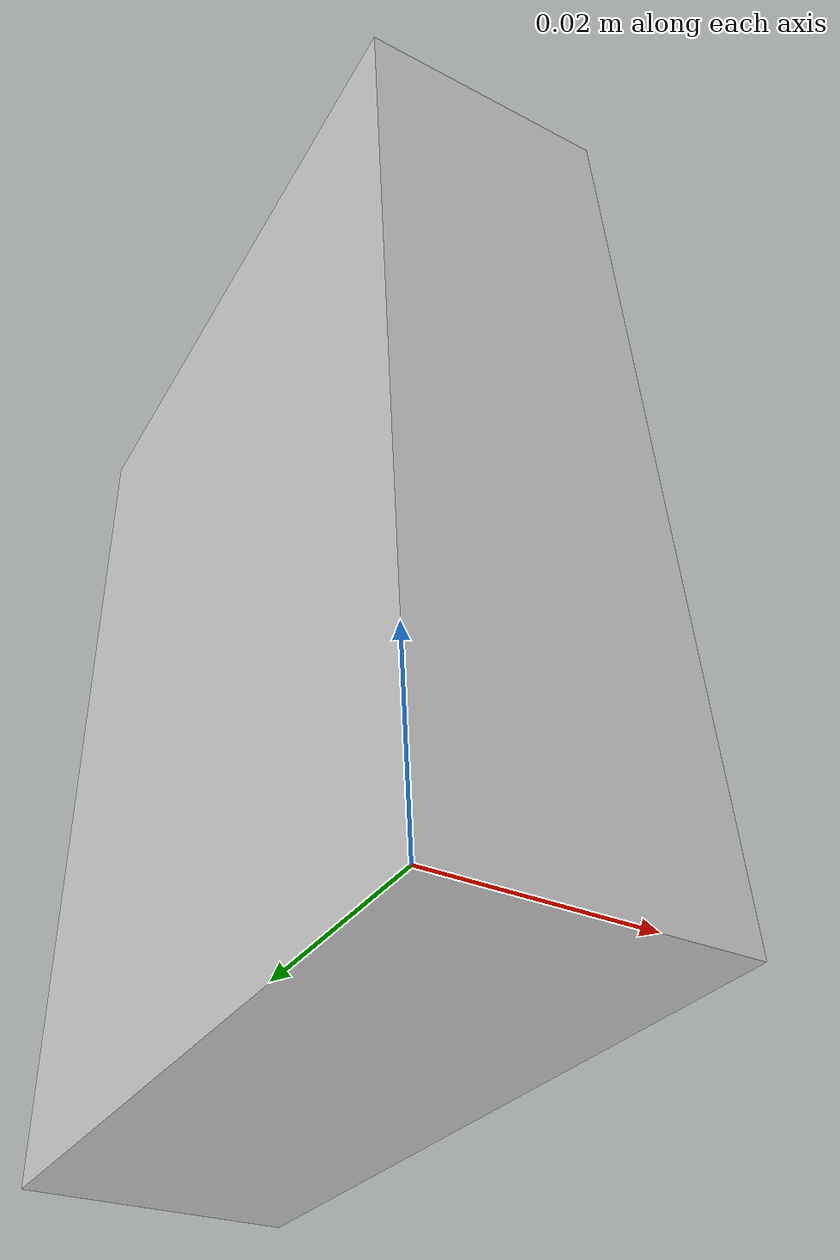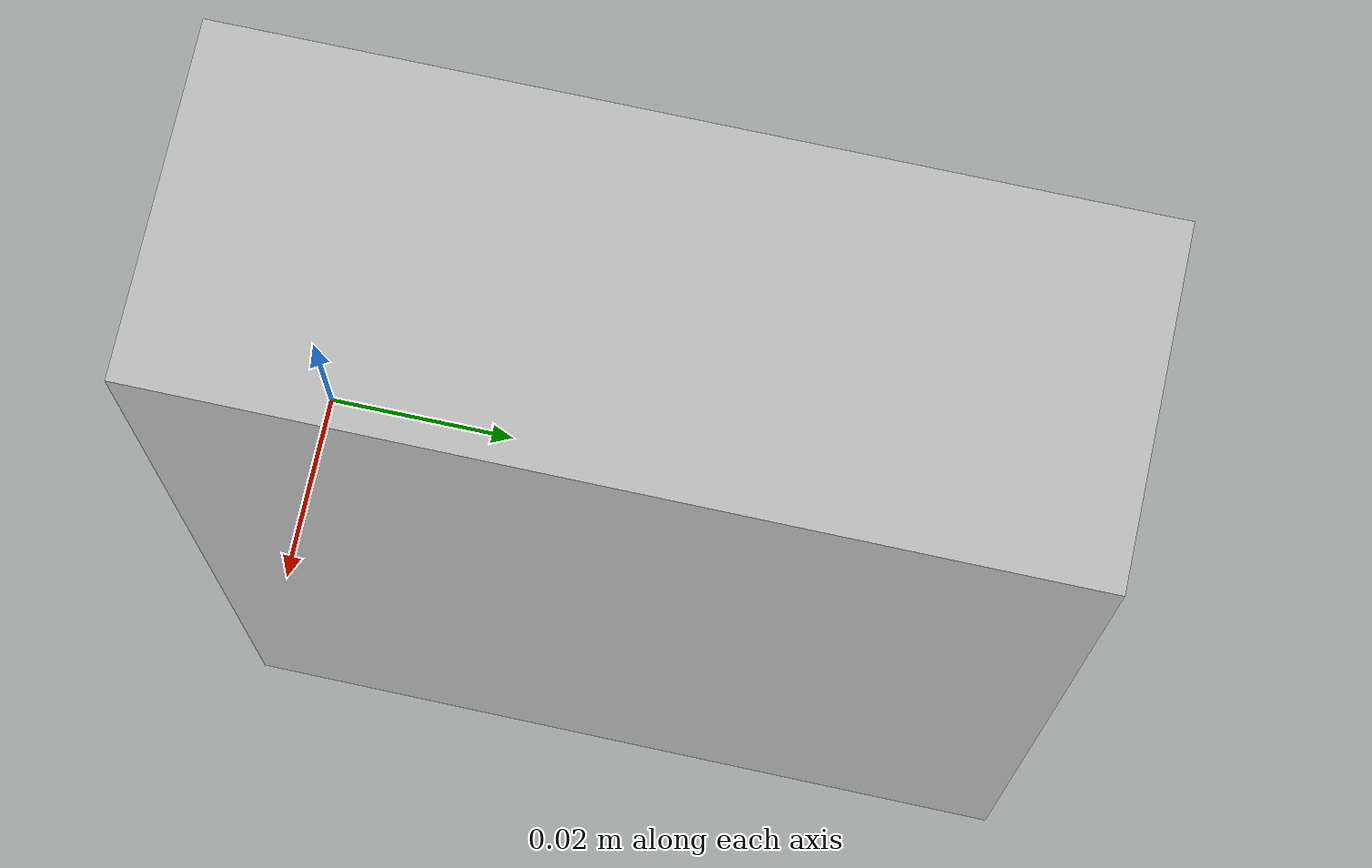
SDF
<?xml version="1.0" ?>
<sdf version="1.4">
  <model name="z-froot_loop">
    <link name="z-froot_loop_link">
      <inertial>
        <pose>-0.00 0.0 -0.005 0 0 0</pose>
        <mass>0.8</mass>
        <inertia>
          <ixx>0.001667</ixx>
	  <ixy>0.0</ixy>
	  <ixz>0.0</ixz>
	  <iyy>0.001667</iyy>
	  <iyz>0.0</iyz>
	  <izz>0.001667</izz>
	</inertia>
      </inertial>

      <visual name="z-froot_loop_visual">
        <pose>0 0 0 0 0 0 </pose>
        <material>
	  <lighting>1</lighting>
	  <ambient>0.2 0.2 0.2 1</ambient>
	  <diffuse>0.8 0.8 0.8 1</diffuse>
	  <specular>0.2 0.2 0.2 1</specular>
	  <emissive>0.55 0.55 0.55 1</emissive>
          <script>
            <uri>model://z-froot_loop/materials/scripts</uri>
            <uri>model://z-froot_loop/materials/textures</uri>
            <name>Z-froot_loop/Image</name>
          </script>
        </material>
        <geometry>
          <mesh>
            <uri>model://z-froot_loop/meshes/z-froot_loop.dae</uri>
	    <scale>0.5 0.5 0.5</scale>
          </mesh>
        </geometry>
      </visual>

      <collision name="z-froot_loop_collision">
        <pose>0.0 0.0 0.02 0.0 0.0 0.0</pose>
        <geometry>
	  <cylinder>
	    <radius>0.012</radius>
	    <length>0.04</length>
	  </cylinder>
        </geometry>
        <max_contacts>10</max_contacts>
        <surface>
          <contact>
	    <ode>
	      <max_vel>0.000</max_vel>
            </ode>
          </contact>
          <bounce/>
          <friction>
            <torsional>
              <ode/>
            </torsional>
            <ode>
              <mu>1</mu>
              <mu2>1</mu2>
            </ode>
          </friction>
        </surface>
      </collision>
      <self_collide>0</self_collide>
      <kinematic>0</kinematic>
    </link>
  </model>
</sdf>
